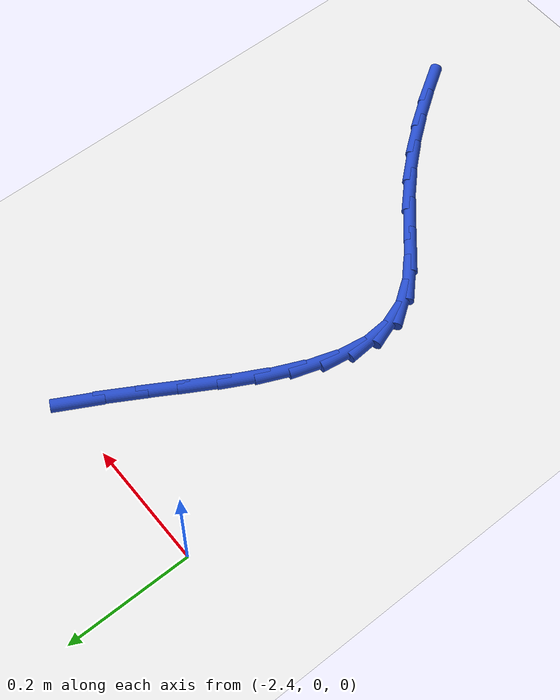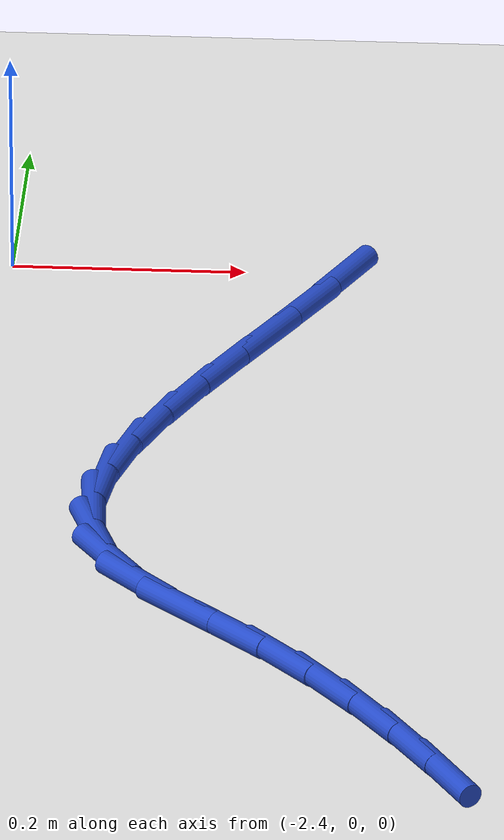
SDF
<sdf version="1.6">
 <world name="default">
  <model name="ground_plane">
   <static>1</static>
   <link name="link">
    <collision name="collision">
     <geometry><plane><normal>0 0 1</normal><size>100 100</size></plane></geometry>
     <surface><friction><ode><mu>100</mu><mu2>50</mu2></ode></friction></surface>
    </collision>
    <visual name="visual">
     <cast_shadows>0</cast_shadows>
     <geometry><plane><normal>0 0 1</normal><size>100 100</size></plane></geometry>
     <material>
      <script><uri>file://media/materials/scripts/gazebo.material</uri><name>Gazebo/WhiteGlow</name></script>
     </material>
    </visual>
   </link>
  </model>
  <model name="line">
   <link name="link_75">
    <pose>-2.1145031373572953 -0.017316251824687486 0.01 0 1.57 1.0742284082468219</pose>
    <collision name="collision">
     <geometry><cylinder><radius>0.01</radius><length>0.08</length></cylinder></geometry>
    </collision>
    <visual name="visual">
     <material>
      <script><name>Gazebo/Blue</name><uri>file://media/materials/scripts/gazebo.material</uri></script>
     </material>
     <geometry><cylinder><radius>0.01</radius><length>0.08</length></cylinder></geometry>
    </visual>
   </link>
   <link name="link_76">
    <pose>-2.144415843094335 -0.07252057168518905 0.01 0 1.57 1.0447928098181314</pose>
    <collision name="collision">
     <geometry><cylinder><radius>0.01</radius><length>0.08</length></cylinder></geometry>
    </collision>
    <visual name="visual">
     <material>
      <script><name>Gazebo/Blue</name><uri>file://media/materials/scripts/gazebo.material</uri></script>
     </material>
     <geometry><cylinder><radius>0.01</radius><length>0.08</length></cylinder></geometry>
    </visual>
   </link>
   <link name="link_77">
    <pose>-2.175539186495517 -0.12612965058062217 0.01 0 1.57 1.0357111062813753</pose>
    <collision name="collision">
     <geometry><cylinder><radius>0.01</radius><length>0.08</length></cylinder></geometry>
    </collision>
    <visual name="visual">
     <material>
      <script><name>Gazebo/Blue</name><uri>file://media/materials/scripts/gazebo.material</uri></script>
     </material>
     <geometry><cylinder><radius>0.01</radius><length>0.08</length></cylinder></geometry>
    </visual>
   </link>
   <link name="link_78">
    <pose>-2.206349229046411 -0.1781061723399799 0.01 0 1.57 1.048267958763821</pose>
    <collision name="collision">
     <geometry><cylinder><radius>0.01</radius><length>0.08</length></cylinder></geometry>
    </collision>
    <visual name="visual">
     <material>
      <script><name>Gazebo/Blue</name><uri>file://media/materials/scripts/gazebo.material</uri></script>
     </material>
     <geometry><cylinder><radius>0.01</radius><length>0.08</length></cylinder></geometry>
    </visual>
   </link>
   <link name="link_79">
    <pose>-2.2353220322325904 -0.22841282079225786 0.01 0 1.57 1.0857874203427875</pose>
    <collision name="collision">
     <geometry><cylinder><radius>0.01</radius><length>0.08</length></cylinder></geometry>
    </collision>
    <visual name="visual">
     <material>
      <script><name>Gazebo/Blue</name><uri>file://media/materials/scripts/gazebo.material</uri></script>
     </material>
     <geometry><cylinder><radius>0.01</radius><length>0.08</length></cylinder></geometry>
    </visual>
   </link>
   <link name="link_80">
    <pose>-2.260933657539627 -0.27701227976644827 0.01 0 1.57 1.1543183925947502</pose>
    <collision name="collision">
     <geometry><cylinder><radius>0.01</radius><length>0.08</length></cylinder></geometry>
    </collision>
    <visual name="visual">
     <material>
      <script><name>Gazebo/Blue</name><uri>file://media/materials/scripts/gazebo.material</uri></script>
     </material>
     <geometry><cylinder><radius>0.01</radius><length>0.08</length></cylinder></geometry>
    </visual>
   </link>
   <link name="link_81">
    <pose>-2.2816601664530904 -0.32386723309154664 0.01 0 1.57 1.2632270751261423</pose>
    <collision name="collision">
     <geometry><cylinder><radius>0.01</radius><length>0.08</length></cylinder></geometry>
    </collision>
    <visual name="visual">
     <material>
      <script><name>Gazebo/Blue</name><uri>file://media/materials/scripts/gazebo.material</uri></script>
     </material>
     <geometry><cylinder><radius>0.01</radius><length>0.08</length></cylinder></geometry>
    </visual>
   </link>
   <link name="link_82">
    <pose>-2.2959776204585554 -0.3689403645965462 0.01 0 1.57 1.4242505175443674</pose>
    <collision name="collision">
     <geometry><cylinder><radius>0.01</radius><length>0.08</length></cylinder></geometry>
    </collision>
    <visual name="visual">
     <material>
      <script><name>Gazebo/Blue</name><uri>file://media/materials/scripts/gazebo.material</uri></script>
     </material>
     <geometry><cylinder><radius>0.01</radius><length>0.08</length></cylinder></geometry>
    </visual>
   </link>
   <link name="link_83">
    <pose>-2.3023620810415912 -0.41219435811044003 0.01 0 1.57 -1.4967134587783186</pose>
    <collision name="collision">
     <geometry><cylinder><radius>0.01</radius><length>0.08</length></cylinder></geometry>
    </collision>
    <visual name="visual">
     <material>
      <script><name>Gazebo/Blue</name><uri>file://media/materials/scripts/gazebo.material</uri></script>
     </material>
     <geometry><cylinder><radius>0.01</radius><length>0.08</length></cylinder></geometry>
    </visual>
   </link>
   <link name="link_84">
    <pose>-2.299289609687771 -0.4535918974622234 0.01 0 1.57 -1.2290110119227846</pose>
    <collision name="collision">
     <geometry><cylinder><radius>0.01</radius><length>0.08</length></cylinder></geometry>
    </collision>
    <visual name="visual">
     <material>
      <script><name>Gazebo/Blue</name><uri>file://media/materials/scripts/gazebo.material</uri></script>
     </material>
     <geometry><cylinder><radius>0.01</radius><length>0.08</length></cylinder></geometry>
    </visual>
   </link>
   <link name="link_85">
    <pose>-2.2852362678826657 -0.4930956664808889 0.01 0 1.57 -0.9586162371993611</pose>
    <collision name="collision">
     <geometry><cylinder><radius>0.01</radius><length>0.08</length></cylinder></geometry>
    </collision>
    <visual name="visual">
     <material>
      <script><name>Gazebo/Blue</name><uri>file://media/materials/scripts/gazebo.material</uri></script>
     </material>
     <geometry><cylinder><radius>0.01</radius><length>0.08</length></cylinder></geometry>
    </visual>
   </link>
   <link name="link_86">
    <pose>-2.258832722712502 -0.5306985093788835 0.01 0 1.57 -0.77809241806855</pose>
    <collision name="collision">
     <geometry><cylinder><radius>0.01</radius><length>0.08</length></cylinder></geometry>
    </collision>
    <visual name="visual">
     <material>
      <script><name>Gazebo/Blue</name><uri>file://media/materials/scripts/gazebo.material</uri></script>
     </material>
     <geometry><cylinder><radius>0.01</radius><length>0.08</length></cylinder></geometry>
    </visual>
   </link>
   <link name="link_87">
    <pose>-2.22196763697077 -0.567028838545997 0.01 0 1.57 -0.7086524532377303</pose>
    <collision name="collision">
     <geometry><cylinder><radius>0.01</radius><length>0.08</length></cylinder></geometry>
    </collision>
    <visual name="visual">
     <material>
      <script><name>Gazebo/Blue</name><uri>file://media/materials/scripts/gazebo.material</uri></script>
     </material>
     <geometry><cylinder><radius>0.01</radius><length>0.08</length></cylinder></geometry>
    </visual>
   </link>
   <link name="link_88">
    <pose>-2.1796302736883106 -0.6033199299196083 0.01 0 1.57 -0.7207730951128262</pose>
    <collision name="collision">
     <geometry><cylinder><radius>0.01</radius><length>0.08</length></cylinder></geometry>
    </collision>
    <visual name="visual">
     <material>
      <script><name>Gazebo/Blue</name><uri>file://media/materials/scripts/gazebo.material</uri></script>
     </material>
     <geometry><cylinder><radius>0.01</radius><length>0.08</length></cylinder></geometry>
    </visual>
   </link>
   <link name="link_89">
    <pose>-2.136931023697971 -0.640828514983173 0.01 0 1.57 -0.7891672546818544</pose>
    <collision name="collision">
     <geometry><cylinder><radius>0.01</radius><length>0.08</length></cylinder></geometry>
    </collision>
    <visual name="visual">
     <material>
      <script><name>Gazebo/Blue</name><uri>file://media/materials/scripts/gazebo.material</uri></script>
     </material>
     <geometry><cylinder><radius>0.01</radius><length>0.08</length></cylinder></geometry>
    </visual>
   </link>
   <link name="link_90">
    <pose>-2.097628450472204 -0.6804284804882457 0.01 0 1.57 -0.8584596163414779</pose>
    <collision name="collision">
     <geometry><cylinder><radius>0.01</radius><length>0.08</length></cylinder></geometry>
    </collision>
    <visual name="visual">
     <material>
      <script><name>Gazebo/Blue</name><uri>file://media/materials/scripts/gazebo.material</uri></script>
     </material>
     <geometry><cylinder><radius>0.01</radius><length>0.08</length></cylinder></geometry>
    </visual>
   </link>
   <link name="link_91">
    <pose>-2.061775440044577 -0.7219442455345491 0.01 0 1.57 -0.91739252631136</pose>
    <collision name="collision">
     <geometry><cylinder><radius>0.01</radius><length>0.08</length></cylinder></geometry>
    </collision>
    <visual name="visual">
     <material>
      <script><name>Gazebo/Blue</name><uri>file://media/materials/scripts/gazebo.material</uri></script>
     </material>
     <geometry><cylinder><radius>0.01</radius><length>0.08</length></cylinder></geometry>
    </visual>
   </link>
   <link name="link_92">
    <pose>-2.028795570060082 -0.7650220057234799 0.01 0 1.57 -0.9648907891315452</pose>
    <collision name="collision">
     <geometry><cylinder><radius>0.01</radius><length>0.08</length></cylinder></geometry>
    </collision>
    <visual name="visual">
     <material>
      <script><name>Gazebo/Blue</name><uri>file://media/materials/scripts/gazebo.material</uri></script>
     </material>
     <geometry><cylinder><radius>0.01</radius><length>0.08</length></cylinder></geometry>
    </visual>
   </link>
   <link name="link_93">
    <pose>-1.9981124181637122 -0.8093079566564322 0.01 0 1.57 -1.0003360846118745</pose>
    <collision name="collision">
     <geometry><cylinder><radius>0.01</radius><length>0.08</length></cylinder></geometry>
    </collision>
    <visual name="visual">
     <material>
      <script><name>Gazebo/Blue</name><uri>file://media/materials/scripts/gazebo.material</uri></script>
     </material>
     <geometry><cylinder><radius>0.01</radius><length>0.08</length></cylinder></geometry>
    </visual>
   </link>
  </model>
 </world>
</sdf>
